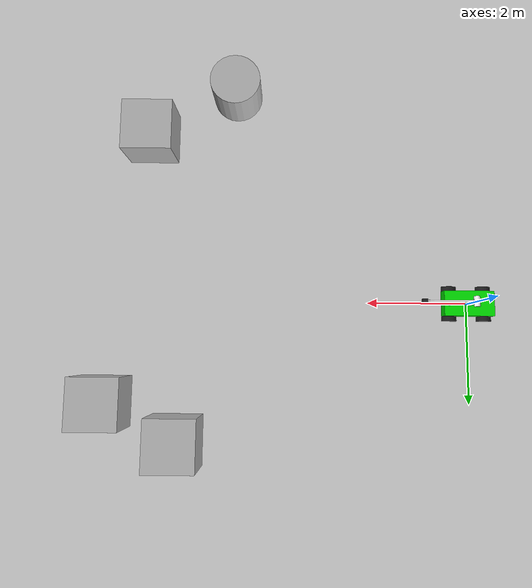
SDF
<sdf version="1.9">
 <world name="empty">
  <physics name="1ms" type="ignored">
   <max_step_size>0.001</max_step_size>
   <real_time_factor>1</real_time_factor>
   <real_time_update_rate>1000</real_time_update_rate>
  </physics>
  <plugin name="gz::sim::systems::Physics" filename="ignition-gazebo-physics-system"/>
  <plugin name="gz::sim::systems::UserCommands" filename="ignition-gazebo-user-commands-system"/>
  <plugin name="gz::sim::systems::SceneBroadcaster" filename="ignition-gazebo-scene-broadcaster-system"/>
  <plugin name="gz::sim::systems::Contact" filename="ignition-gazebo-contact-system"/>
  <plugin name="gz::sim::systems::Sensors" filename="ignition-gazebo-sensors-system">
   <render_engine>ogre2</render_engine>
  </plugin>
  <plugin name="gz::sim::systems::Imu" filename="ignition-gazebo-imu-system"/>
  <gravity>0 0 -9.8</gravity>
  <magnetic_field>6e-06 2.3e-05 -4.2e-05</magnetic_field>
  <atmosphere type="adiabatic"/>
  <scene><ambient>0.4 0.4 0.4 1</ambient><background>0.7 0.7 0.7 1</background><shadows>true</shadows></scene>
  <model name="ground_plane">
   <static>true</static>
   <link name="link">
    <collision name="collision">
     <geometry><plane><normal>0 0 1</normal><size>100 100</size></plane></geometry>
    </collision>
    <visual name="visual">
     <geometry><plane><normal>0 0 1</normal><size>100 100</size></plane></geometry>
     <material>
      <ambient>0.8 0.8 0.8 1</ambient>
      <diffuse>0.8 0.8 0.8 1</diffuse>
      <specular>0.8 0.8 0.8 1</specular>
     </material>
    </visual>
    <inertial>
     <mass>1</mass>
     <inertia><ixx>1</ixx><ixy>0</ixy><ixz>0</ixz><iyy>1</iyy><iyz>0</iyz><izz>1</izz></inertia>
    </inertial>
   </link>
  </model>
  <model name="my_robo">
   <link name="base_link">
    <inertial>
     <pose>0.006547 0 0.115974 0 -0 0</pose>
     <mass>6.1100000000000003</mass>
     <inertia>
      <ixx>0.87523700000000004</ixx>
      <ixy>0</ixy>
      <ixz>-0.0081610499999999996</ixz>
      <iyy>0.60416499999999995</iyy>
      <iyz>0</iyz>
      <izz>0.60400799999999999</izz>
     </inertia>
    </inertial>
    <collision name="base_link_collision"><geometry><box><size>1 0.5 0.3</size></box></geometry></collision>
    <collision name="base_link_fixed_joint_lump__arm_base_collision_1">
     <pose>0 0 0.55 0 0 0</pose>
     <geometry><cylinder><length>0.5</length><radius>0.050000000000000003</radius></cylinder></geometry>
    </collision>
    <collision name="base_link_fixed_joint_lump__arm_joint_cylinder_collision_2">
     <pose>0 0 0.8 0 0 0</pose>
     <geometry><cylinder><length>0.5</length><radius>0.050000000000000003</radius></cylinder></geometry>
    </collision>
    <collision name="base_link_fixed_joint_lump__imu_link_collision_3">
     <pose>0 0 0.16 0 0 0</pose>
     <geometry><box><size>0.03 0.03 0.01</size></box></geometry>
    </collision>
    <collision name="base_link_fixed_joint_lump__lidar_link_collision_4">
     <pose>0.4 0 0.32 0 0 0</pose>
     <geometry>
      <cylinder><length>0.040000000000000001</length><radius>0.050000000000000003</radius></cylinder>
     </geometry>
    </collision>
    <visual name="base_link_visual">
     <pose>0 0 0.15 0 0 0</pose>
     <geometry><box><size>1 0.5 0.3</size></box></geometry>
     <material><diffuse>0 0.875 0 1</diffuse><ambient>0 0.875 0 1</ambient></material>
    </visual>
    <visual name="base_link_fixed_joint_lump__arm_base_visual_1">
     <pose>0 0 0.55 0 0 0</pose>
     <geometry><cylinder><length>0.5</length><radius>0.050000000000000003</radius></cylinder></geometry>
     <material><diffuse>1 1 1 1</diffuse><ambient>1 1 1 1</ambient></material>
    </visual>
    <visual name="base_link_fixed_joint_lump__arm_joint_cylinder_visual_2">
     <pose>0 0 0.8 0 1.570796326794897 -1.570796326794897</pose>
     <geometry>
      <cylinder><length>0.20000000000000001</length><radius>0.059999999999999998</radius></cylinder>
     </geometry>
     <material><diffuse>1 1 1 1</diffuse><ambient>1 1 1 1</ambient></material>
    </visual>
    <visual name="base_link_fixed_joint_lump__imu_link_visual_3">
     <pose>0 0 0.16 0 0 0</pose>
     <geometry><box><size>0.03 0.03 0.01</size></box></geometry>
     <material><diffuse>0.875 0.875 0.875 1</diffuse><ambient>0.875 0.875 0.875 1</ambient></material>
    </visual>
    <visual name="base_link_fixed_joint_lump__lidar_link_visual_4">
     <pose>0.4 0 0.32 0 0 0</pose>
     <geometry>
      <cylinder><length>0.040000000000000001</length><radius>0.050000000000000003</radius></cylinder>
     </geometry>
     <material><diffuse>0 0.25 1 1</diffuse><ambient>0 0.25 1 1</ambient></material>
    </visual>
    <sensor name="imu" type="imu">
     <pose>0 0 0.31 0 0 0</pose>
     <topic>/model/my_robo/imu</topic>
     <update_rate>100</update_rate>
     <imu>
      <angular_velocity>
       <x><noise type="gaussian"><mean>0</mean><stddev>0.001</stddev></noise></x>
       <y><noise type="gaussian"><mean>0</mean><stddev>0.001</stddev></noise></y>
       <z><noise type="gaussian"><mean>0</mean><stddev>0.001</stddev></noise></z>
      </angular_velocity>
      <linear_acceleration>
       <x><noise type="gaussian"><mean>0</mean><stddev>0.01</stddev></noise></x>
       <y><noise type="gaussian"><mean>0</mean><stddev>0.01</stddev></noise></y>
       <z><noise type="gaussian"><mean>0</mean><stddev>0.01</stddev></noise></z>
      </linear_acceleration>
     </imu>
     <always_on>1</always_on>
     <visualize>true</visualize>
    </sensor>
    <sensor name="lidar" type="gpu_lidar">
     <pose>0.4 0 0.47 0 0 0</pose>
     <topic>/model/my_robo/lidar</topic>
     <update_rate>10</update_rate>
     <ray>
      <scan>
       <horizontal>
        <samples>360</samples>
        <resolution>1</resolution>
        <min_angle>-3.14159</min_angle>
        <max_angle>3.14159</max_angle>
       </horizontal>
      </scan>
      <range><min>0.15</min><max>12.0</max><resolution>0.01</resolution></range>
      <noise><type>gaussian</type><mean>0.0</mean><stddev>0.01</stddev></noise>
     </ray>
     <always_on>1</always_on>
     <visualize>true</visualize>
     <frame_id>lidar_link</frame_id>
    </sensor>
   </link>
   <joint name="arm_to_extension" type="revolute">
    <parent>base_link</parent>
    <child>arm_extension</child>
    <axis>
     <xyz>0 1 0</xyz>
     <limit>
      <lower>-1.5700000000000001</lower>
      <upper>1.5700000000000001</upper>
      <effort>10</effort>
      <velocity>1</velocity>
      <stiffness>100000000</stiffness>
      <dissipation>1</dissipation>
     </limit>
     <dynamics>
      <spring_reference>0</spring_reference>
      <spring_stiffness>0</spring_stiffness>
      <damping>0</damping>
      <friction>0</friction>
     </dynamics>
    </axis>
   </joint>
   <link name="arm_extension">
    <pose>0 0 0.8 0 -0 0</pose>
    <inertial>
     <pose>0.091 0 0 0 -0 0</pose>
     <mass>0.55000000000000004</mass>
     <inertia>
      <ixx>0.010829999999999999</ixx>
      <ixy>0</ixy>
      <ixz>0</ixz>
      <iyy>0.046270499999999999</iyy>
      <iyz>0</iyz>
      <izz>0.056375500000000002</izz>
     </inertia>
    </inertial>
    <collision name="arm_extension_collision">
     <geometry><cylinder><length>1</length><radius>0.050000000000000003</radius></cylinder></geometry>
    </collision>
    <collision name="arm_extension_fixed_joint_lump__camera_link_collision_1">
     <pose>1.001 0 0 0 0 0</pose>
     <geometry><box><size>0.05 0.08 0.05</size></box></geometry>
    </collision>
    <visual name="arm_extension_visual">
     <pose>0.5 0 0 0 1.570796326794897 0</pose>
     <geometry><cylinder><length>1</length><radius>0.02</radius></cylinder></geometry>
     <material><diffuse>1 1 1 1</diffuse><ambient>1 1 1 1</ambient></material>
    </visual>
    <visual name="arm_extension_fixed_joint_lump__camera_link_visual_1">
     <pose>1.001 0 0 0 0 0</pose>
     <geometry><box><size>0.1 0.08 0.1</size></box></geometry>
     <material><diffuse>0.125 0.125 0.125 1</diffuse><ambient>0.125 0.125 0.125 1</ambient></material>
    </visual>
    <sensor name="camera" type="camera">
     <pose>1.001 0 0.95 0 0 0</pose>
     <topic>/model/my_robo/camera</topic>
     <update_rate>30</update_rate>
     <camera>
      <horizontal_fov>1.047</horizontal_fov>
      <image><width>640</width><height>480</height><format>R8G8B8</format></image>
      <clip><near>0.1</near><far>100</far></clip>
      <noise><type>gaussian</type><mean>0.0</mean><stddev>0.007</stddev></noise>
     </camera>
     <always_on>1</always_on>
     <visualize>true</visualize>
     <frame_id>camera_link</frame_id>
    </sensor>
   </link>
   <joint name="front_left_wheel_joint" type="revolute">
    <parent>base_link</parent>
    <child>front_left_wheel</child>
    <axis>
     <xyz>0 1 0</xyz>
     <limit>
      <lower>-10000000000000000</lower>
      <upper>10000000000000000</upper>
      <effort>inf</effort>
      <velocity>inf</velocity>
      <stiffness>100000000</stiffness>
      <dissipation>1</dissipation>
     </limit>
     <dynamics>
      <spring_reference>0</spring_reference>
      <spring_stiffness>0</spring_stiffness>
      <damping>0</damping>
      <friction>0</friction>
     </dynamics>
    </axis>
   </joint>
   <link name="front_left_wheel">
    <pose>0.35 0.3 0 0 -0 0</pose>
    <inertial>
     <pose>0 0 0 1.5708 -0 0</pose>
     <mass>1</mass>
     <inertia>
      <ixx>0.0064599999999999996</ixx>
      <ixy>0</ixy>
      <ixz>0</ixz>
      <iyy>0.01125</iyy>
      <iyz>0</iyz>
      <izz>0.0064599999999999996</izz>
     </inertia>
    </inertial>
    <collision name="front_left_wheel_collision">
     <pose>0 0 0 1.5708 0 0</pose>
     <geometry>
      <cylinder><length>0.10000000000000001</length><radius>0.14999999999999999</radius></cylinder>
     </geometry>
    </collision>
    <visual name="front_left_wheel_visual">
     <pose>0 0 0 1.5708 0 0</pose>
     <geometry>
      <cylinder><length>0.10000000000000001</length><radius>0.14999999999999999</radius></cylinder>
     </geometry>
     <material><diffuse>0.125 0.125 0.125 1</diffuse><ambient>0.125 0.125 0.125 1</ambient></material>
    </visual>
   </link>
   <joint name="front_right_wheel_joint" type="revolute">
    <parent>base_link</parent>
    <child>front_right_wheel</child>
    <axis>
     <xyz>0 1 0</xyz>
     <limit>
      <lower>-10000000000000000</lower>
      <upper>10000000000000000</upper>
      <effort>inf</effort>
      <velocity>inf</velocity>
      <stiffness>100000000</stiffness>
      <dissipation>1</dissipation>
     </limit>
     <dynamics>
      <spring_reference>0</spring_reference>
      <spring_stiffness>0</spring_stiffness>
      <damping>0</damping>
      <friction>0</friction>
     </dynamics>
    </axis>
   </joint>
   <link name="front_right_wheel">
    <pose>-0.35 0.3 0 0 -0 0</pose>
    <inertial>
     <pose>0 0 0 1.5708 -0 0</pose>
     <mass>1</mass>
     <inertia>
      <ixx>0.0064599999999999996</ixx>
      <ixy>0</ixy>
      <ixz>0</ixz>
      <iyy>0.01125</iyy>
      <iyz>0</iyz>
      <izz>0.0064599999999999996</izz>
     </inertia>
    </inertial>
    <collision name="front_right_wheel_collision">
     <pose>0 0 0 1.5708 0 0</pose>
     <geometry>
      <cylinder><length>0.10000000000000001</length><radius>0.14999999999999999</radius></cylinder>
     </geometry>
    </collision>
    <visual name="front_right_wheel_visual">
     <pose>0 0 0 1.5708 0 0</pose>
     <geometry>
      <cylinder><length>0.10000000000000001</length><radius>0.14999999999999999</radius></cylinder>
     </geometry>
     <material><diffuse>0.125 0.125 0.125 1</diffuse><ambient>0.125 0.125 0.125 1</ambient></material>
    </visual>
   </link>
   <joint name="rear_left_wheel_joint" type="revolute">
    <parent>base_link</parent>
    <child>rear_left_wheel</child>
    <axis>
     <xyz>0 1 0</xyz>
     <limit>
      <lower>-10000000000000000</lower>
      <upper>10000000000000000</upper>
      <effort>inf</effort>
      <velocity>inf</velocity>
      <stiffness>100000000</stiffness>
      <dissipation>1</dissipation>
     </limit>
     <dynamics>
      <spring_reference>0</spring_reference>
      <spring_stiffness>0</spring_stiffness>
      <damping>0</damping>
      <friction>0</friction>
     </dynamics>
    </axis>
   </joint>
   <link name="rear_left_wheel">
    <pose>0.35 -0.3 0 0 -0 0</pose>
    <inertial>
     <pose>0 0 0 1.5708 -0 0</pose>
     <mass>1</mass>
     <inertia>
      <ixx>0.0064599999999999996</ixx>
      <ixy>0</ixy>
      <ixz>0</ixz>
      <iyy>0.01125</iyy>
      <iyz>0</iyz>
      <izz>0.0064599999999999996</izz>
     </inertia>
    </inertial>
    <collision name="rear_left_wheel_collision">
     <pose>0 0 0 1.5708 0 0</pose>
     <geometry>
      <cylinder><length>0.10000000000000001</length><radius>0.14999999999999999</radius></cylinder>
     </geometry>
    </collision>
    <visual name="rear_left_wheel_visual">
     <pose>0 0 0 1.5708 0 0</pose>
     <geometry>
      <cylinder><length>0.10000000000000001</length><radius>0.14999999999999999</radius></cylinder>
     </geometry>
     <material><diffuse>0.125 0.125 0.125 1</diffuse><ambient>0.125 0.125 0.125 1</ambient></material>
    </visual>
   </link>
   <joint name="rear_right_wheel_joint" type="revolute">
    <parent>base_link</parent>
    <child>rear_right_wheel</child>
    <axis>
     <xyz>0 1 0</xyz>
     <limit>
      <lower>-10000000000000000</lower>
      <upper>10000000000000000</upper>
      <effort>inf</effort>
      <velocity>inf</velocity>
      <stiffness>100000000</stiffness>
      <dissipation>1</dissipation>
     </limit>
     <dynamics>
      <spring_reference>0</spring_reference>
      <spring_stiffness>0</spring_stiffness>
      <damping>0</damping>
      <friction>0</friction>
     </dynamics>
    </axis>
   </joint>
   <link name="rear_right_wheel">
    <pose>-0.35 -0.3 0 0 -0 0</pose>
    <inertial>
     <pose>0 0 0 1.5708 -0 0</pose>
     <mass>1</mass>
     <inertia>
      <ixx>0.0064599999999999996</ixx>
      <ixy>0</ixy>
      <ixz>0</ixz>
      <iyy>0.01125</iyy>
      <iyz>0</iyz>
      <izz>0.0064599999999999996</izz>
     </inertia>
    </inertial>
    <collision name="rear_right_wheel_collision">
     <pose>0 0 0 1.5708 0 0</pose>
     <geometry>
      <cylinder><length>0.10000000000000001</length><radius>0.14999999999999999</radius></cylinder>
     </geometry>
    </collision>
    <visual name="rear_right_wheel_visual">
     <pose>0 0 0 1.5708 0 0</pose>
     <geometry>
      <cylinder><length>0.10000000000000001</length><radius>0.14999999999999999</radius></cylinder>
     </geometry>
     <material><diffuse>0.125 0.125 0.125 1</diffuse><ambient>0.125 0.125 0.125 1</ambient></material>
    </visual>
   </link>
   <plugin name="ignition::gazebo::systems::DiffDrive" filename="libignition-gazebo-diff-drive-system.so">
    <left_joint>rear_left_wheel_joint</left_joint>
    <right_joint>rear_right_wheel_joint</right_joint>
    <wheel_separation>0.5</wheel_separation>
    <wheel_radius>0.15</wheel_radius>
    <odom_publish_frequency>1</odom_publish_frequency>
    <odom_topic>/model/my_robo/odometry</odom_topic>
    <topic>/model/my_robo/cmd_vel</topic>
    <publish_odom>true</publish_odom>
    <publish_odom_tf>true</publish_odom_tf>
    <publish_wheel_tf>true</publish_wheel_tf>
   </plugin>
   <plugin name="ignition::gazebo::systems::JointStatePublisher" filename="libignition-gazebo-joint-state-publisher-system.so">
    <joint>rear_left_wheel_joint</joint>
    <joint>rear_right_wheel_joint</joint>
    <joint>front_left_wheel_joint</joint>
    <joint>front_right_wheel_joint</joint>
    <joint>arm_to_extension</joint>
   </plugin>
   <plugin filename="gz_ros2_control-system" name="gz_ros2_control::GazeboSimROS2ControlPlugin">
    <robot_param>robot_description</robot_param>
    <robot_param_node>robot_state_publisher</robot_param_node>
    <parameters>/home/abhay-07/arm_controllers.yaml</parameters>
   </plugin>
   <frame name="arm_to_extension_cylinder" attached_to="arm_base"><pose>0 0 0.25 0 -0 0</pose></frame>
   <frame name="arm_joint_cylinder" attached_to="arm_to_extension_cylinder"/>
   <frame name="arm_to_base" attached_to="base_link"><pose>0 0 0.55 0 -0 0</pose></frame>
   <frame name="arm_base" attached_to="arm_to_base"/>
   <frame name="end_effector_to_ae" attached_to="arm_extension"><pose>1.001 0 0 0 -0 0</pose></frame>
   <frame name="camera_link" attached_to="end_effector_to_ae"/>
   <frame name="imu_joint" attached_to="base_link"><pose>0 0 0.16 0 -0 0</pose></frame>
   <frame name="imu_link" attached_to="imu_joint"/>
   <frame name="lidar_joint" attached_to="base_link"><pose>0.4 0 0.32 0 -0 0</pose></frame>
   <frame name="lidar_link" attached_to="lidar_joint"/>
   <static>false</static>
  </model>
  <model name="box">
   <pose>7.23774 1.97937 0.5 0 -0 0</pose>
   <link name="box_link">
    <inertial>
     <inertia><ixx>0.16666</ixx><ixy>0</ixy><ixz>0</ixz><iyy>0.16666</iyy><iyz>0</iyz><izz>0.16666</izz></inertia>
     <mass>1</mass>
    </inertial>
    <collision name="box_collision"><geometry><box><size>1 1 1</size></box></geometry></collision>
    <visual name="box_visual">
     <geometry><box><size>1 1 1</size></box></geometry>
     <material>
      <ambient>0.3 0.3 0.3 1</ambient>
      <diffuse>0.7 0.7 0.7 1</diffuse>
      <specular>1 1 1 1</specular>
     </material>
    </visual>
   </link>
   <static>false</static>
  </model>
  <model name="box_0">
   <pose>6.44069 -3.42776 0.5 0 -0 0</pose>
   <link name="box_link">
    <inertial>
     <inertia><ixx>0.16666</ixx><ixy>0</ixy><ixz>0</ixz><iyy>0.16666</iyy><iyz>0</iyz><izz>0.16666</izz></inertia>
     <mass>1</mass>
    </inertial>
    <collision name="box_collision"><geometry><box><size>1 1 1</size></box></geometry></collision>
    <visual name="box_visual">
     <geometry><box><size>1 1 1</size></box></geometry>
     <material>
      <ambient>0.3 0.3 0.3 1</ambient>
      <diffuse>0.7 0.7 0.7 1</diffuse>
      <specular>1 1 1 1</specular>
     </material>
    </visual>
   </link>
   <static>false</static>
  </model>
  <model name="box_1">
   <pose>5.79004 2.72205 0.5 0 -0 0</pose>
   <link name="box_link">
    <inertial>
     <inertia><ixx>0.16666</ixx><ixy>0</ixy><ixz>0</ixz><iyy>0.16666</iyy><iyz>0</iyz><izz>0.16666</izz></inertia>
     <mass>1</mass>
    </inertial>
    <collision name="box_collision"><geometry><box><size>1 1 1</size></box></geometry></collision>
    <visual name="box_visual">
     <geometry><box><size>1 1 1</size></box></geometry>
     <material>
      <ambient>0.3 0.3 0.3 1</ambient>
      <diffuse>0.7 0.7 0.7 1</diffuse>
      <specular>1 1 1 1</specular>
     </material>
    </visual>
   </link>
   <static>false</static>
  </model>
  <model name="cylinder">
   <pose>4.70835 -4.35823 0.5 0 -0 0</pose>
   <link name="cylinder_link">
    <inertial>
     <inertia>
      <ixx>0.14580000000000001</ixx>
      <ixy>0</ixy>
      <ixz>0</ixz>
      <iyy>0.14580000000000001</iyy>
      <iyz>0</iyz>
      <izz>0.125</izz>
     </inertia>
     <mass>1</mass>
    </inertial>
    <collision name="cylinder_collision">
     <geometry><cylinder><radius>0.5</radius><length>1</length></cylinder></geometry>
    </collision>
    <visual name="cylinder_visual">
     <geometry><cylinder><radius>0.5</radius><length>1</length></cylinder></geometry>
     <material>
      <ambient>0.3 0.3 0.3 1</ambient>
      <diffuse>0.7 0.7 0.7 1</diffuse>
      <specular>1 1 1 1</specular>
     </material>
    </visual>
   </link>
   <static>false</static>
  </model>
  <light name="sun" type="directional">
   <pose>0 0 10 0 -0 0</pose>
   <intensity>1</intensity>
   <direction>-0.5 0.1 -0.9</direction>
   <diffuse>0.8 0.8 0.8 1</diffuse>
   <specular>0.2 0.2 0.2 1</specular>
   <attenuation>
    <range>1000</range>
    <linear>0.01</linear>
    <constant>0.90000000000000002</constant>
    <quadratic>0.001</quadratic>
   </attenuation>
   <spot><inner_angle>0</inner_angle><outer_angle>0</outer_angle><falloff>0</falloff></spot>
  </light>
 </world>
</sdf>
